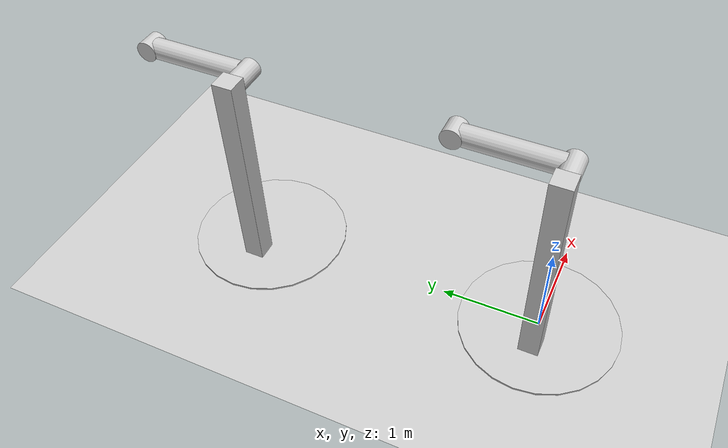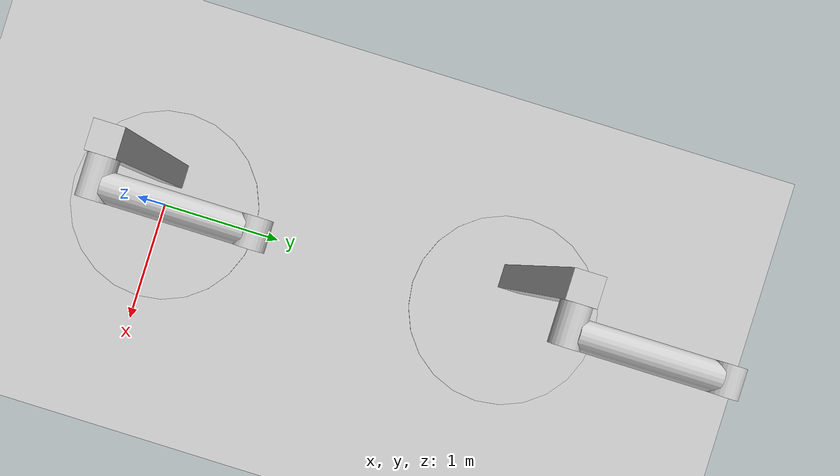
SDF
<?xml version="1.0" ?>
<!--

  Demo of Automatic Inertia Calculations using a pendulum setup

-->
<sdf version="1.11">
  <world name="auto_inertia_pendulum">
    <plugin
      filename="gz-sim-apply-link-wrench-system"
      name="gz::sim::systems::ApplyLinkWrench">
    </plugin>

    <physics name="1ms" type="ignored">
      <max_step_size>0.001</max_step_size>
      <real_time_factor>1.0</real_time_factor>
    </physics>
    <plugin
       filename="gz-sim-physics-system"
        name="gz::sim::systems::Physics">
    </plugin>
    <plugin
        filename="gz-sim-user-commands-system"
        name="gz::sim::systems::UserCommands">
    </plugin>
    <plugin
        filename="gz-sim-scene-broadcaster-system"
        name="gz::sim::systems::SceneBroadcaster">
    </plugin>

    <light type="directional" name="sun">
      <cast_shadows>true</cast_shadows>
      <pose>0 0 10 0 0 0</pose>
      <diffuse>0.8 0.8 0.8 1</diffuse>
      <specular>0.2 0.2 0.2 1</specular>
      <attenuation>
        <range>1000</range>
        <constant>0.9</constant>
        <linear>0.01</linear>
        <quadratic>0.001</quadratic>
      </attenuation>
      <direction>-0.5 0.1 -0.9</direction>
    </light>

    <model name="ground_plane">
      <static>true</static>
      <link name="link">
        <collision name="collision">
          <geometry>
            <plane>
              <normal>0 0 1</normal>
              <size>100 100</size>
            </plane>
          </geometry>
        </collision>
        <visual name="visual">
          <geometry>
            <plane>
              <normal>0 0 1</normal>
              <size>100 100</size>
            </plane>
          </geometry>
          <material>
            <ambient>0.8 0.8 0.8 1</ambient>
            <diffuse>0.8 0.8 0.8 1</diffuse>
            <specular>0.8 0.8 0.8 1</specular>
          </material>
        </visual>
      </link>
    </model>

    <model name="pendulum">
      <link name="base">
        <inertial>
          <pose>-0.188749 0 0.75813399999999997 -0.13567899999999999 0 1.5708</pose>
          <mass>256.42500000000001</mass>
          <inertia>
            <ixx>154.202</ixx>
            <ixy>0</ixy>
            <ixz>0</ixz>
            <iyy>152.286</iyy>
            <iyz>0</iyz>
            <izz>28.8249</izz>
          </inertia>
        </inertial>
        <visual name="vis_plate_on_ground">
          <pose>0 0 0.01 0 0 0</pose>
          <geometry>
            <cylinder>
              <radius>0.8</radius>
              <length>0.02</length>
            </cylinder>
          </geometry>
          <material>
            <ambient>0.8 0.8 0.8 1</ambient>
            <diffuse>0.8 0.8 0.8 1</diffuse>
            <specular>0.8 0.8 0.8 1</specular>
          </material>
        </visual>
        <visual name="vis_pole">
          <pose>-0.275 0 1.1 0 0 0</pose>
          <geometry>
            <box>
              <size>0.2 0.2 2.2</size>
            </box>
          </geometry>
          <material>
            <ambient>0.8 0.8 0.8 1</ambient>
            <diffuse>0.8 0.8 0.8 1</diffuse>
            <specular>0.8 0.8 0.8 1</specular>
          </material>
        </visual>
        <collision name="col_plate_on_ground">
          <pose>0 0 0.01 0 0 0</pose>
          <geometry>
            <cylinder>
              <radius>0.8</radius>
              <length>0.02</length>
            </cylinder>
          </geometry>
        </collision>
        <collision name="col_pole">
          <pose>-0.275 0 1.1 0 0 0</pose>
          <geometry>
            <box>
              <size>0.2 0.2 2.2</size>
            </box>
          </geometry>
        </collision>
      </link>

      <!-- upper link, length 1, IC -90 degrees -->
      <link name="upper_link">
        <pose>0 0 2.1 -1.5708 0 0</pose>
        <self_collide>0</self_collide>
        <inertial auto="true" />
        <visual name="vis_upper_joint">
          <pose>-0.05 0 0 0 1.5708 0</pose>
          <geometry>
            <cylinder>
              <radius>0.1</radius>
              <length>0.3</length>
            </cylinder>
          </geometry>
          <material>
            <ambient>0.8 0.8 0.8 1</ambient>
            <diffuse>0.8 0.8 0.8 1</diffuse>
            <specular>0.8 0.8 0.8 1</specular>
          </material>
        </visual>
        <visual name="vis_bob">
          <pose>0 0 1.0 0 1.5708 0</pose>
          <geometry>
            <cylinder>
              <radius>0.1</radius>
              <length>0.2</length>
            </cylinder>
          </geometry>
          <material>
            <ambient>0.8 0.8 0.8 1</ambient>
            <diffuse>0.8 0.8 0.8 1</diffuse>
            <specular>0.8 0.8 0.8 1</specular>
          </material>
        </visual>
        <visual name="vis_cylinder">
          <pose>0 0 0.5 0 0 0</pose>
          <geometry>
            <cylinder>
              <radius>0.1</radius>
              <length>0.9</length>
            </cylinder>
          </geometry>
          <material>
            <ambient>0.8 0.8 0.8 1</ambient>
            <diffuse>0.8 0.8 0.8 1</diffuse>
            <specular>0.8 0.8 0.8 1</specular>
          </material>
        </visual>
        <collision name="col_upper_joint">
          <density>8000</density>
          <pose>-0.05 0 0 0 1.5708 0</pose>
          <geometry>
            <cylinder>
              <radius>0.1</radius>
              <length>0.3</length>
            </cylinder>
          </geometry>
        </collision>
        <collision name="col_bob">
          <density>1000</density>
          <pose>0 0 1.0 0 1.5708 0</pose>
          <geometry>
            <cylinder>
              <radius>0.1</radius>
              <length>0.3</length>
            </cylinder>
          </geometry>
        </collision>
        <collision name="col_cylinder">
          <density>1000</density>
          <pose>0 0 0.5 0 0 0</pose>
          <geometry>
            <cylinder>
              <radius>0.1</radius>
              <length>0.9</length>
            </cylinder>
          </geometry>
        </collision>
      </link>

      <!-- pin joint for upper link, at origin of upper link -->
      <joint name="upper_joint" type="revolute">
        <parent>base</parent>
        <child>upper_link</child>
        <axis>
          <xyz>1.0 0 0</xyz>
        </axis>
      </joint>
    </model>

    <model name="pendulum2">
      <pose>0 3 0 0 0 0</pose>
      <link name="base">
        <inertial>
          <pose>-0.188749 0 0.75813399999999997 -0.13567899999999999 0 1.5708</pose>
          <mass>256.42500000000001</mass>
          <inertia>
            <ixx>154.202</ixx>
            <ixy>0</ixy>
            <ixz>0</ixz>
            <iyy>152.286</iyy>
            <iyz>0</iyz>
            <izz>28.8249</izz>
          </inertia>
        </inertial>
        <visual name="vis_plate_on_ground">
          <pose>0 0 0.01 0 0 0</pose>
          <geometry>
            <cylinder>
              <radius>0.8</radius>
              <length>0.02</length>
            </cylinder>
          </geometry>
          <material>
            <ambient>0.8 0.8 0.8 1</ambient>
            <diffuse>0.8 0.8 0.8 1</diffuse>
            <specular>0.8 0.8 0.8 1</specular>
          </material>
        </visual>
        <visual name="vis_pole">
          <pose>-0.275 0 1.1 0 0 0</pose>
          <geometry>
            <box>
              <size>0.2 0.2 2.2</size>
            </box>
          </geometry>
          <material>
            <ambient>0.8 0.8 0.8 1</ambient>
            <diffuse>0.8 0.8 0.8 1</diffuse>
            <specular>0.8 0.8 0.8 1</specular>
          </material>
        </visual>
        <collision name="col_plate_on_ground">
          <pose>0 0 0.01 0 0 0</pose>
          <geometry>
            <cylinder>
              <radius>0.8</radius>
              <length>0.02</length>
            </cylinder>
          </geometry>
        </collision>
        <collision name="col_pole">
          <pose>-0.275 0 1.1 0 0 0</pose>
          <geometry>
            <box>
              <size>0.2 0.2 2.2</size>
            </box>
          </geometry>
        </collision>
      </link>

      <!-- upper link, length 1, IC -90 degrees -->
      <link name="upper_link">
        <pose>0 0 2.1 -1.5708 0 0</pose>
        <self_collide>0</self_collide>
        <inertial auto="true" />
        <visual name="vis_upper_joint">
          <pose>-0.05 0 0 0 1.5708 0</pose>
          <geometry>
            <cylinder>
              <radius>0.1</radius>
              <length>0.3</length>
            </cylinder>
          </geometry>
          <material>
            <ambient>0.8 0.8 0.8 1</ambient>
            <diffuse>0.8 0.8 0.8 1</diffuse>
            <specular>0.8 0.8 0.8 1</specular>
          </material>
        </visual>
        <visual name="vis_bob">
          <pose>0 0 1.0 0 1.5708 0</pose>
          <geometry>
            <cylinder>
              <radius>0.1</radius>
              <length>0.2</length>
            </cylinder>
          </geometry>
          <material>
            <ambient>0.8 0.8 0.8 1</ambient>
            <diffuse>0.8 0.8 0.8 1</diffuse>
            <specular>0.8 0.8 0.8 1</specular>
          </material>
        </visual>
        <visual name="vis_cylinder">
          <pose>0 0 0.5 0 0 0</pose>
          <geometry>
            <cylinder>
              <radius>0.1</radius>
              <length>0.9</length>
            </cylinder>
          </geometry>
          <material>
            <ambient>0.8 0.8 0.8 1</ambient>
            <diffuse>0.8 0.8 0.8 1</diffuse>
            <specular>0.8 0.8 0.8 1</specular>
          </material>
        </visual>
        <collision name="col_upper_joint">
          <density>100</density>
          <pose>-0.05 0 0 0 1.5708 0</pose>
          <geometry>
            <cylinder>
              <radius>0.1</radius>
              <length>0.3</length>
            </cylinder>
          </geometry>
        </collision>
        <collision name="col_bob">
          <density>10000</density>
          <pose>0 0 1.0 0 1.5708 0</pose>
          <geometry>
            <cylinder>
              <radius>0.1</radius>
              <length>0.3</length>
            </cylinder>
          </geometry>
        </collision>
        <collision name="col_cylinder">
          <density>100</density>
          <pose>0 0 0.5 0 0 0</pose>
          <geometry>
            <cylinder>
              <radius>0.1</radius>
              <length>0.9</length>
            </cylinder>
          </geometry>
        </collision>
      </link>

      <!-- pin joint for upper link, at origin of upper link -->
      <joint name="upper_joint" type="revolute">
        <parent>base</parent>
        <child>upper_link</child>
        <axis>
          <xyz>1.0 0 0</xyz>
        </axis>
      </joint>
    </model>

  </world>
</sdf>
